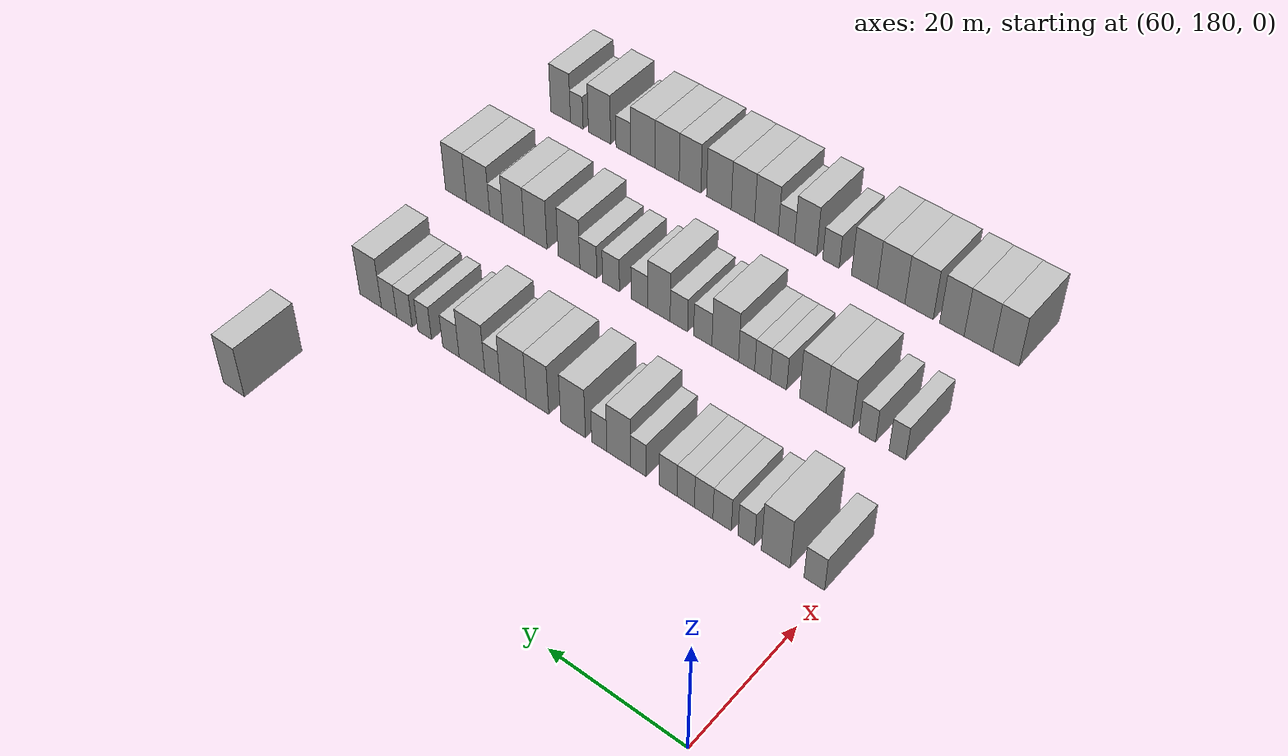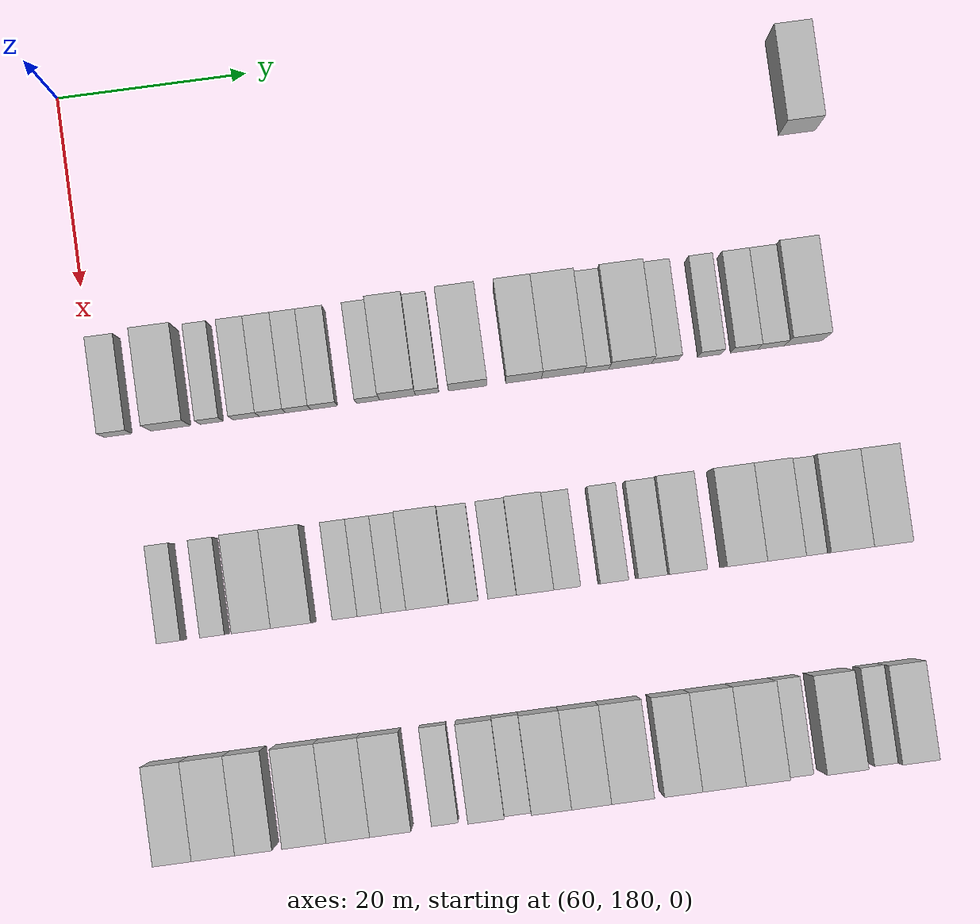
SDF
<sdf version="1.6">
 <world name="default">
  <model name="building_517">
   <static>1</static>
   <pose>69.0000 256.3888 0 0.000000 0.000000 0.000000</pose>
   <link name="link">
    <pose>0 0 4.50 0 0 0</pose>
    <collision name="collision"><geometry><box><size>10.0000 3.8949 9.0000</size></box></geometry></collision>
    <visual name="visual">
     <cast_shadows>0</cast_shadows>
     <geometry><box><size>10.0000 3.8949 9.0000</size></box></geometry>
     <material>
      <script>
       <uri>model://HANNAS_wall/materials/scripts</uri>
       <uri>model://HANNAS_wall/materials/textures</uri>
       <name>vrc/HANNAS_wall</name>
      </script>
     </material>
    </visual>
   </link>
  </model>
  <model name="building_684">
   <static>1</static>
   <pose>91.0000 181.8995 0 0.000000 0.000000 0.000000</pose>
   <link name="link">
    <pose>0 0 3.00 0 0 0</pose>
    <collision name="collision"><geometry><box><size>10.0000 2.9157 6.0000</size></box></geometry></collision>
    <visual name="visual">
     <cast_shadows>0</cast_shadows>
     <geometry><box><size>10.0000 2.9157 6.0000</size></box></geometry>
     <material>
      <script>
       <uri>model://HANNAS_wall/materials/scripts</uri>
       <uri>model://HANNAS_wall/materials/textures</uri>
       <name>vrc/HANNAS_wall</name>
      </script>
     </material>
    </visual>
   </link>
  </model>
  <model name="building_685">
   <static>1</static>
   <pose>91.0000 187.4403 0 0.000000 0.000000 0.000000</pose>
   <link name="link">
    <pose>0 0 4.50 0 0 0</pose>
    <collision name="collision"><geometry><box><size>10.0000 4.1660 9.0000</size></box></geometry></collision>
    <visual name="visual">
     <cast_shadows>0</cast_shadows>
     <geometry><box><size>10.0000 4.1660 9.0000</size></box></geometry>
     <material>
      <script>
       <uri>model://HANNAS_wall/materials/scripts</uri>
       <uri>model://HANNAS_wall/materials/textures</uri>
       <name>vrc/HANNAS_wall</name>
      </script>
     </material>
    </visual>
   </link>
  </model>
  <model name="building_686">
   <static>1</static>
   <pose>91.0000 191.7420 0 0.000000 0.000000 0.000000</pose>
   <link name="link">
    <pose>0 0 3.00 0 0 0</pose>
    <collision name="collision"><geometry><box><size>10.0000 2.4373 6.0000</size></box></geometry></collision>
    <visual name="visual">
     <cast_shadows>0</cast_shadows>
     <geometry><box><size>10.0000 2.4373 6.0000</size></box></geometry>
     <material>
      <script>
       <uri>model://HANNAS_wall/materials/scripts</uri>
       <uri>model://HANNAS_wall/materials/textures</uri>
       <name>vrc/HANNAS_wall</name>
      </script>
     </material>
    </visual>
   </link>
  </model>
  <model name="building_687">
   <static>1</static>
   <pose>91.0000 195.3330 0 0.000000 0.000000 0.000000</pose>
   <link name="link">
    <pose>0 0 3.00 0 0 0</pose>
    <collision name="collision"><geometry><box><size>10.0000 2.7448 6.0000</size></box></geometry></collision>
    <visual name="visual">
     <cast_shadows>0</cast_shadows>
     <geometry><box><size>10.0000 2.7448 6.0000</size></box></geometry>
     <material>
      <script>
       <uri>model://HANNAS_wall/materials/scripts</uri>
       <uri>model://HANNAS_wall/materials/textures</uri>
       <name>vrc/HANNAS_wall</name>
      </script>
     </material>
    </visual>
   </link>
  </model>
  <model name="building_688">
   <static>1</static>
   <pose>91.0000 198.1022 0 0.000000 0.000000 0.000000</pose>
   <link name="link">
    <pose>0 0 3.00 0 0 0</pose>
    <collision name="collision"><geometry><box><size>10.0000 2.7935 6.0000</size></box></geometry></collision>
    <visual name="visual">
     <cast_shadows>0</cast_shadows>
     <geometry><box><size>10.0000 2.7935 6.0000</size></box></geometry>
     <material>
      <script>
       <uri>model://HANNAS_wall/materials/scripts</uri>
       <uri>model://HANNAS_wall/materials/textures</uri>
       <name>vrc/HANNAS_wall</name>
      </script>
     </material>
    </visual>
   </link>
  </model>
  <model name="building_689">
   <static>1</static>
   <pose>91.0000 200.8182 0 0.000000 0.000000 0.000000</pose>
   <link name="link">
    <pose>0 0 3.00 0 0 0</pose>
    <collision name="collision"><geometry><box><size>10.0000 2.6385 6.0000</size></box></geometry></collision>
    <visual name="visual">
     <cast_shadows>0</cast_shadows>
     <geometry><box><size>10.0000 2.6385 6.0000</size></box></geometry>
     <material>
      <script>
       <uri>model://HANNAS_wall/materials/scripts</uri>
       <uri>model://HANNAS_wall/materials/textures</uri>
       <name>vrc/HANNAS_wall</name>
      </script>
     </material>
    </visual>
   </link>
  </model>
  <model name="building_690">
   <static>1</static>
   <pose>91.0000 203.5372 0 0.000000 0.000000 0.000000</pose>
   <link name="link">
    <pose>0 0 3.00 0 0 0</pose>
    <collision name="collision"><geometry><box><size>10.0000 2.7995 6.0000</size></box></geometry></collision>
    <visual name="visual">
     <cast_shadows>0</cast_shadows>
     <geometry><box><size>10.0000 2.7995 6.0000</size></box></geometry>
     <material>
      <script>
       <uri>model://HANNAS_wall/materials/scripts</uri>
       <uri>model://HANNAS_wall/materials/textures</uri>
       <name>vrc/HANNAS_wall</name>
      </script>
     </material>
    </visual>
   </link>
  </model>
  <model name="building_691">
   <static>1</static>
   <pose>91.0000 208.1622 0 0.000000 0.000000 0.000000</pose>
   <link name="link">
    <pose>0 0 3.00 0 0 0</pose>
    <collision name="collision"><geometry><box><size>10.0000 2.4504 6.0000</size></box></geometry></collision>
    <visual name="visual">
     <cast_shadows>0</cast_shadows>
     <geometry><box><size>10.0000 2.4504 6.0000</size></box></geometry>
     <material>
      <script>
       <uri>model://HANNAS_wall/materials/scripts</uri>
       <uri>model://HANNAS_wall/materials/textures</uri>
       <name>vrc/HANNAS_wall</name>
      </script>
     </material>
    </visual>
   </link>
  </model>
  <model name="building_692">
   <static>1</static>
   <pose>91.0000 211.2656 0 0.000000 0.000000 0.000000</pose>
   <link name="link">
    <pose>0 0 4.50 0 0 0</pose>
    <collision name="collision"><geometry><box><size>10.0000 3.7565 9.0000</size></box></geometry></collision>
    <visual name="visual">
     <cast_shadows>0</cast_shadows>
     <geometry><box><size>10.0000 3.7565 9.0000</size></box></geometry>
     <material>
      <script>
       <uri>model://HANNAS_wall/materials/scripts</uri>
       <uri>model://HANNAS_wall/materials/textures</uri>
       <name>vrc/HANNAS_wall</name>
      </script>
     </material>
    </visual>
   </link>
  </model>
  <model name="building_693">
   <static>1</static>
   <pose>91.0000 214.3686 0 0.000000 0.000000 0.000000</pose>
   <link name="link">
    <pose>0 0 3.00 0 0 0</pose>
    <collision name="collision"><geometry><box><size>10.0000 2.4495 6.0000</size></box></geometry></collision>
    <visual name="visual">
     <cast_shadows>0</cast_shadows>
     <geometry><box><size>10.0000 2.4495 6.0000</size></box></geometry>
     <material>
      <script>
       <uri>model://HANNAS_wall/materials/scripts</uri>
       <uri>model://HANNAS_wall/materials/textures</uri>
       <name>vrc/HANNAS_wall</name>
      </script>
     </material>
    </visual>
   </link>
  </model>
  <model name="building_694">
   <static>1</static>
   <pose>91.0000 218.6057 0 0.000000 0.000000 0.000000</pose>
   <link name="link">
    <pose>0 0 4.50 0 0 0</pose>
    <collision name="collision"><geometry><box><size>10.0000 4.0247 9.0000</size></box></geometry></collision>
    <visual name="visual">
     <cast_shadows>0</cast_shadows>
     <geometry><box><size>10.0000 4.0247 9.0000</size></box></geometry>
     <material>
      <script>
       <uri>model://HANNAS_wall/materials/scripts</uri>
       <uri>model://HANNAS_wall/materials/textures</uri>
       <name>vrc/HANNAS_wall</name>
      </script>
     </material>
    </visual>
   </link>
  </model>
  <model name="building_695">
   <static>1</static>
   <pose>91.0000 224.4945 0 0.000000 0.000000 0.000000</pose>
   <link name="link">
    <pose>0 0 4.50 0 0 0</pose>
    <collision name="collision"><geometry><box><size>10.0000 3.7529 9.0000</size></box></geometry></collision>
    <visual name="visual">
     <cast_shadows>0</cast_shadows>
     <geometry><box><size>10.0000 3.7529 9.0000</size></box></geometry>
     <material>
      <script>
       <uri>model://HANNAS_wall/materials/scripts</uri>
       <uri>model://HANNAS_wall/materials/textures</uri>
       <name>vrc/HANNAS_wall</name>
      </script>
     </material>
    </visual>
   </link>
  </model>
  <model name="building_696">
   <static>1</static>
   <pose>91.0000 228.5931 0 0.000000 0.000000 0.000000</pose>
   <link name="link">
    <pose>0 0 4.50 0 0 0</pose>
    <collision name="collision"><geometry><box><size>10.0000 4.4443 9.0000</size></box></geometry></collision>
    <visual name="visual">
     <cast_shadows>0</cast_shadows>
     <geometry><box><size>10.0000 4.4443 9.0000</size></box></geometry>
     <material>
      <script>
       <uri>model://HANNAS_wall/materials/scripts</uri>
       <uri>model://HANNAS_wall/materials/textures</uri>
       <name>vrc/HANNAS_wall</name>
      </script>
     </material>
    </visual>
   </link>
  </model>
  <model name="building_697">
   <static>1</static>
   <pose>91.0000 232.1292 0 0.000000 0.000000 0.000000</pose>
   <link name="link">
    <pose>0 0 3.00 0 0 0</pose>
    <collision name="collision"><geometry><box><size>10.0000 2.6278 6.0000</size></box></geometry></collision>
    <visual name="visual">
     <cast_shadows>0</cast_shadows>
     <geometry><box><size>10.0000 2.6278 6.0000</size></box></geometry>
     <material>
      <script>
       <uri>model://HANNAS_wall/materials/scripts</uri>
       <uri>model://HANNAS_wall/materials/textures</uri>
       <name>vrc/HANNAS_wall</name>
      </script>
     </material>
    </visual>
   </link>
  </model>
  <model name="building_698">
   <static>1</static>
   <pose>91.0000 235.6832 0 0.000000 0.000000 0.000000</pose>
   <link name="link">
    <pose>0 0 4.50 0 0 0</pose>
    <collision name="collision"><geometry><box><size>10.0000 4.4802 9.0000</size></box></geometry></collision>
    <visual name="visual">
     <cast_shadows>0</cast_shadows>
     <geometry><box><size>10.0000 4.4802 9.0000</size></box></geometry>
     <material>
      <script>
       <uri>model://HANNAS_wall/materials/scripts</uri>
       <uri>model://HANNAS_wall/materials/textures</uri>
       <name>vrc/HANNAS_wall</name>
      </script>
     </material>
    </visual>
   </link>
  </model>
  <model name="building_699">
   <static>1</static>
   <pose>91.0000 239.3700 0 0.000000 0.000000 0.000000</pose>
   <link name="link">
    <pose>0 0 3.00 0 0 0</pose>
    <collision name="collision"><geometry><box><size>10.0000 2.8936 6.0000</size></box></geometry></collision>
    <visual name="visual">
     <cast_shadows>0</cast_shadows>
     <geometry><box><size>10.0000 2.8936 6.0000</size></box></geometry>
     <material>
      <script>
       <uri>model://HANNAS_wall/materials/scripts</uri>
       <uri>model://HANNAS_wall/materials/textures</uri>
       <name>vrc/HANNAS_wall</name>
      </script>
     </material>
    </visual>
   </link>
  </model>
  <model name="building_700">
   <static>1</static>
   <pose>91.0000 244.0454 0 0.000000 0.000000 0.000000</pose>
   <link name="link">
    <pose>0 0 3.00 0 0 0</pose>
    <collision name="collision"><geometry><box><size>10.0000 2.4572 6.0000</size></box></geometry></collision>
    <visual name="visual">
     <cast_shadows>0</cast_shadows>
     <geometry><box><size>10.0000 2.4572 6.0000</size></box></geometry>
     <material>
      <script>
       <uri>model://HANNAS_wall/materials/scripts</uri>
       <uri>model://HANNAS_wall/materials/textures</uri>
       <name>vrc/HANNAS_wall</name>
      </script>
     </material>
    </visual>
   </link>
  </model>
  <model name="building_701">
   <static>1</static>
   <pose>91.0000 247.6893 0 0.000000 0.000000 0.000000</pose>
   <link name="link">
    <pose>0 0 3.00 0 0 0</pose>
    <collision name="collision"><geometry><box><size>10.0000 2.8304 6.0000</size></box></geometry></collision>
    <visual name="visual">
     <cast_shadows>0</cast_shadows>
     <geometry><box><size>10.0000 2.8304 6.0000</size></box></geometry>
     <material>
      <script>
       <uri>model://HANNAS_wall/materials/scripts</uri>
       <uri>model://HANNAS_wall/materials/textures</uri>
       <name>vrc/HANNAS_wall</name>
      </script>
     </material>
    </visual>
   </link>
  </model>
  <model name="building_702">
   <static>1</static>
   <pose>91.0000 250.5088 0 0.000000 0.000000 0.000000</pose>
   <link name="link">
    <pose>0 0 3.00 0 0 0</pose>
    <collision name="collision"><geometry><box><size>10.0000 2.8086 6.0000</size></box></geometry></collision>
    <visual name="visual">
     <cast_shadows>0</cast_shadows>
     <geometry><box><size>10.0000 2.8086 6.0000</size></box></geometry>
     <material>
      <script>
       <uri>model://HANNAS_wall/materials/scripts</uri>
       <uri>model://HANNAS_wall/materials/textures</uri>
       <name>vrc/HANNAS_wall</name>
      </script>
     </material>
    </visual>
   </link>
  </model>
  <model name="building_703">
   <static>1</static>
   <pose>91.0000 253.9216 0 0.000000 0.000000 0.000000</pose>
   <link name="link">
    <pose>0 0 4.50 0 0 0</pose>
    <collision name="collision"><geometry><box><size>10.0000 4.0170 9.0000</size></box></geometry></collision>
    <visual name="visual">
     <cast_shadows>0</cast_shadows>
     <geometry><box><size>10.0000 4.0170 9.0000</size></box></geometry>
     <material>
      <script>
       <uri>model://HANNAS_wall/materials/scripts</uri>
       <uri>model://HANNAS_wall/materials/textures</uri>
       <name>vrc/HANNAS_wall</name>
      </script>
     </material>
    </visual>
   </link>
  </model>
  <model name="building_883">
   <static>1</static>
   <pose>113.0000 185.0300 0 0.000000 0.000000 0.000000</pose>
   <link name="link">
    <pose>0 0 3.00 0 0 0</pose>
    <collision name="collision"><geometry><box><size>10.0000 2.4411 6.0000</size></box></geometry></collision>
    <visual name="visual">
     <cast_shadows>0</cast_shadows>
     <geometry><box><size>10.0000 2.4411 6.0000</size></box></geometry>
     <material>
      <script>
       <uri>model://HANNAS_wall/materials/scripts</uri>
       <uri>model://HANNAS_wall/materials/textures</uri>
       <name>vrc/HANNAS_wall</name>
      </script>
     </material>
    </visual>
   </link>
  </model>
  <model name="building_884">
   <static>1</static>
   <pose>113.0000 189.5087 0 0.000000 0.000000 0.000000</pose>
   <link name="link">
    <pose>0 0 3.00 0 0 0</pose>
    <collision name="collision"><geometry><box><size>10.0000 2.5164 6.0000</size></box></geometry></collision>
    <visual name="visual">
     <cast_shadows>0</cast_shadows>
     <geometry><box><size>10.0000 2.5164 6.0000</size></box></geometry>
     <material>
      <script>
       <uri>model://HANNAS_wall/materials/scripts</uri>
       <uri>model://HANNAS_wall/materials/textures</uri>
       <name>vrc/HANNAS_wall</name>
      </script>
     </material>
    </visual>
   </link>
  </model>
  <model name="building_885">
   <static>1</static>
   <pose>113.0000 193.7517 0 0.000000 0.000000 0.000000</pose>
   <link name="link">
    <pose>0 0 4.50 0 0 0</pose>
    <collision name="collision"><geometry><box><size>10.0000 3.9695 9.0000</size></box></geometry></collision>
    <visual name="visual">
     <cast_shadows>0</cast_shadows>
     <geometry><box><size>10.0000 3.9695 9.0000</size></box></geometry>
     <material>
      <script>
       <uri>model://HANNAS_wall/materials/scripts</uri>
       <uri>model://HANNAS_wall/materials/textures</uri>
       <name>vrc/HANNAS_wall</name>
      </script>
     </material>
    </visual>
   </link>
  </model>
  <model name="building_886">
   <static>1</static>
   <pose>113.0000 197.7740 0 0.000000 0.000000 0.000000</pose>
   <link name="link">
    <pose>0 0 4.50 0 0 0</pose>
    <collision name="collision"><geometry><box><size>10.0000 4.0751 9.0000</size></box></geometry></collision>
    <visual name="visual">
     <cast_shadows>0</cast_shadows>
     <geometry><box><size>10.0000 4.0751 9.0000</size></box></geometry>
     <material>
      <script>
       <uri>model://HANNAS_wall/materials/scripts</uri>
       <uri>model://HANNAS_wall/materials/textures</uri>
       <name>vrc/HANNAS_wall</name>
      </script>
     </material>
    </visual>
   </link>
  </model>
  <model name="building_887">
   <static>1</static>
   <pose>113.0000 203.0954 0 0.000000 0.000000 0.000000</pose>
   <link name="link">
    <pose>0 0 3.00 0 0 0</pose>
    <collision name="collision"><geometry><box><size>10.0000 2.5678 6.0000</size></box></geometry></collision>
    <visual name="visual">
     <cast_shadows>0</cast_shadows>
     <geometry><box><size>10.0000 2.5678 6.0000</size></box></geometry>
     <material>
      <script>
       <uri>model://HANNAS_wall/materials/scripts</uri>
       <uri>model://HANNAS_wall/materials/textures</uri>
       <name>vrc/HANNAS_wall</name>
      </script>
     </material>
    </visual>
   </link>
  </model>
  <model name="building_888">
   <static>1</static>
   <pose>113.0000 205.6244 0 0.000000 0.000000 0.000000</pose>
   <link name="link">
    <pose>0 0 3.00 0 0 0</pose>
    <collision name="collision"><geometry><box><size>10.0000 2.4902 6.0000</size></box></geometry></collision>
    <visual name="visual">
     <cast_shadows>0</cast_shadows>
     <geometry><box><size>10.0000 2.4902 6.0000</size></box></geometry>
     <material>
      <script>
       <uri>model://HANNAS_wall/materials/scripts</uri>
       <uri>model://HANNAS_wall/materials/textures</uri>
       <name>vrc/HANNAS_wall</name>
      </script>
     </material>
    </visual>
   </link>
  </model>
  <model name="building_889">
   <static>1</static>
   <pose>113.0000 208.1648 0 0.000000 0.000000 0.000000</pose>
   <link name="link">
    <pose>0 0 3.00 0 0 0</pose>
    <collision name="collision"><geometry><box><size>10.0000 2.5906 6.0000</size></box></geometry></collision>
    <visual name="visual">
     <cast_shadows>0</cast_shadows>
     <geometry><box><size>10.0000 2.5906 6.0000</size></box></geometry>
     <material>
      <script>
       <uri>model://HANNAS_wall/materials/scripts</uri>
       <uri>model://HANNAS_wall/materials/textures</uri>
       <name>vrc/HANNAS_wall</name>
      </script>
     </material>
    </visual>
   </link>
  </model>
  <model name="building_890">
   <static>1</static>
   <pose>113.0000 211.6193 0 0.000000 0.000000 0.000000</pose>
   <link name="link">
    <pose>0 0 4.50 0 0 0</pose>
    <collision name="collision"><geometry><box><size>10.0000 4.3185 9.0000</size></box></geometry></collision>
    <visual name="visual">
     <cast_shadows>0</cast_shadows>
     <geometry><box><size>10.0000 4.3185 9.0000</size></box></geometry>
     <material>
      <script>
       <uri>model://HANNAS_wall/materials/scripts</uri>
       <uri>model://HANNAS_wall/materials/textures</uri>
       <name>vrc/HANNAS_wall</name>
      </script>
     </material>
    </visual>
   </link>
  </model>
  <model name="building_891">
   <static>1</static>
   <pose>113.0000 215.2752 0 0.000000 0.000000 0.000000</pose>
   <link name="link">
    <pose>0 0 3.00 0 0 0</pose>
    <collision name="collision"><geometry><box><size>10.0000 2.9932 6.0000</size></box></geometry></collision>
    <visual name="visual">
     <cast_shadows>0</cast_shadows>
     <geometry><box><size>10.0000 2.9932 6.0000</size></box></geometry>
     <material>
      <script>
       <uri>model://HANNAS_wall/materials/scripts</uri>
       <uri>model://HANNAS_wall/materials/textures</uri>
       <name>vrc/HANNAS_wall</name>
      </script>
     </material>
    </visual>
   </link>
  </model>
  <model name="building_892">
   <static>1</static>
   <pose>113.0000 219.2291 0 0.000000 0.000000 0.000000</pose>
   <link name="link">
    <pose>0 0 3.00 0 0 0</pose>
    <collision name="collision"><geometry><box><size>10.0000 2.9147 6.0000</size></box></geometry></collision>
    <visual name="visual">
     <cast_shadows>0</cast_shadows>
     <geometry><box><size>10.0000 2.9147 6.0000</size></box></geometry>
     <material>
      <script>
       <uri>model://HANNAS_wall/materials/scripts</uri>
       <uri>model://HANNAS_wall/materials/textures</uri>
       <name>vrc/HANNAS_wall</name>
      </script>
     </material>
    </visual>
   </link>
  </model>
  <model name="building_893">
   <static>1</static>
   <pose>113.0000 222.5779 0 0.000000 0.000000 0.000000</pose>
   <link name="link">
    <pose>0 0 4.50 0 0 0</pose>
    <collision name="collision"><geometry><box><size>10.0000 3.7829 9.0000</size></box></geometry></collision>
    <visual name="visual">
     <cast_shadows>0</cast_shadows>
     <geometry><box><size>10.0000 3.7829 9.0000</size></box></geometry>
     <material>
      <script>
       <uri>model://HANNAS_wall/materials/scripts</uri>
       <uri>model://HANNAS_wall/materials/textures</uri>
       <name>vrc/HANNAS_wall</name>
      </script>
     </material>
    </visual>
   </link>
  </model>
  <model name="building_894">
   <static>1</static>
   <pose>113.0000 225.8832 0 0.000000 0.000000 0.000000</pose>
   <link name="link">
    <pose>0 0 3.00 0 0 0</pose>
    <collision name="collision"><geometry><box><size>10.0000 2.8278 6.0000</size></box></geometry></collision>
    <visual name="visual">
     <cast_shadows>0</cast_shadows>
     <geometry><box><size>10.0000 2.8278 6.0000</size></box></geometry>
     <material>
      <script>
       <uri>model://HANNAS_wall/materials/scripts</uri>
       <uri>model://HANNAS_wall/materials/textures</uri>
       <name>vrc/HANNAS_wall</name>
      </script>
     </material>
    </visual>
   </link>
  </model>
  <model name="building_895">
   <static>1</static>
   <pose>113.0000 230.7595 0 0.000000 0.000000 0.000000</pose>
   <link name="link">
    <pose>0 0 3.00 0 0 0</pose>
    <collision name="collision"><geometry><box><size>10.0000 2.9247 6.0000</size></box></geometry></collision>
    <visual name="visual">
     <cast_shadows>0</cast_shadows>
     <geometry><box><size>10.0000 2.9247 6.0000</size></box></geometry>
     <material>
      <script>
       <uri>model://HANNAS_wall/materials/scripts</uri>
       <uri>model://HANNAS_wall/materials/textures</uri>
       <name>vrc/HANNAS_wall</name>
      </script>
     </material>
    </visual>
   </link>
  </model>
  <model name="building_896">
   <static>1</static>
   <pose>113.0000 234.7168 0 0.000000 0.000000 0.000000</pose>
   <link name="link">
    <pose>0 0 3.00 0 0 0</pose>
    <collision name="collision"><geometry><box><size>10.0000 2.9900 6.0000</size></box></geometry></collision>
    <visual name="visual">
     <cast_shadows>0</cast_shadows>
     <geometry><box><size>10.0000 2.9900 6.0000</size></box></geometry>
     <material>
      <script>
       <uri>model://HANNAS_wall/materials/scripts</uri>
       <uri>model://HANNAS_wall/materials/textures</uri>
       <name>vrc/HANNAS_wall</name>
      </script>
     </material>
    </visual>
   </link>
  </model>
  <model name="building_897">
   <static>1</static>
   <pose>113.0000 238.1396 0 0.000000 0.000000 0.000000</pose>
   <link name="link">
    <pose>0 0 4.50 0 0 0</pose>
    <collision name="collision"><geometry><box><size>10.0000 3.8555 9.0000</size></box></geometry></collision>
    <visual name="visual">
     <cast_shadows>0</cast_shadows>
     <geometry><box><size>10.0000 3.8555 9.0000</size></box></geometry>
     <material>
      <script>
       <uri>model://HANNAS_wall/materials/scripts</uri>
       <uri>model://HANNAS_wall/materials/textures</uri>
       <name>vrc/HANNAS_wall</name>
      </script>
     </material>
    </visual>
   </link>
  </model>
  <model name="building_898">
   <static>1</static>
   <pose>113.0000 244.1259 0 0.000000 0.000000 0.000000</pose>
   <link name="link">
    <pose>0 0 4.50 0 0 0</pose>
    <collision name="collision"><geometry><box><size>10.0000 4.1171 9.0000</size></box></geometry></collision>
    <visual name="visual">
     <cast_shadows>0</cast_shadows>
     <geometry><box><size>10.0000 4.1171 9.0000</size></box></geometry>
     <material>
      <script>
       <uri>model://HANNAS_wall/materials/scripts</uri>
       <uri>model://HANNAS_wall/materials/textures</uri>
       <name>vrc/HANNAS_wall</name>
      </script>
     </material>
    </visual>
   </link>
  </model>
  <model name="building_899">
   <static>1</static>
   <pose>113.0000 248.1495 0 0.000000 0.000000 0.000000</pose>
   <link name="link">
    <pose>0 0 4.50 0 0 0</pose>
    <collision name="collision"><geometry><box><size>10.0000 3.9302 9.0000</size></box></geometry></collision>
    <visual name="visual">
     <cast_shadows>0</cast_shadows>
     <geometry><box><size>10.0000 3.9302 9.0000</size></box></geometry>
     <material>
      <script>
       <uri>model://HANNAS_wall/materials/scripts</uri>
       <uri>model://HANNAS_wall/materials/textures</uri>
       <name>vrc/HANNAS_wall</name>
      </script>
     </material>
    </visual>
   </link>
  </model>
  <model name="building_900">
   <static>1</static>
   <pose>113.0000 251.3702 0 0.000000 0.000000 0.000000</pose>
   <link name="link">
    <pose>0 0 3.00 0 0 0</pose>
    <collision name="collision"><geometry><box><size>10.0000 2.5113 6.0000</size></box></geometry></collision>
    <visual name="visual">
     <cast_shadows>0</cast_shadows>
     <geometry><box><size>10.0000 2.5113 6.0000</size></box></geometry>
     <material>
      <script>
       <uri>model://HANNAS_wall/materials/scripts</uri>
       <uri>model://HANNAS_wall/materials/textures</uri>
       <name>vrc/HANNAS_wall</name>
      </script>
     </material>
    </visual>
   </link>
  </model>
  <model name="building_901">
   <static>1</static>
   <pose>113.0000 254.8274 0 0.000000 0.000000 0.000000</pose>
   <link name="link">
    <pose>0 0 4.50 0 0 0</pose>
    <collision name="collision"><geometry><box><size>10.0000 4.4030 9.0000</size></box></geometry></collision>
    <visual name="visual">
     <cast_shadows>0</cast_shadows>
     <geometry><box><size>10.0000 4.4030 9.0000</size></box></geometry>
     <material>
      <script>
       <uri>model://HANNAS_wall/materials/scripts</uri>
       <uri>model://HANNAS_wall/materials/textures</uri>
       <name>vrc/HANNAS_wall</name>
      </script>
     </material>
    </visual>
   </link>
  </model>
  <model name="building_902">
   <static>1</static>
   <pose>113.0000 259.0208 0 0.000000 0.000000 0.000000</pose>
   <link name="link">
    <pose>0 0 4.50 0 0 0</pose>
    <collision name="collision"><geometry><box><size>10.0000 3.9839 9.0000</size></box></geometry></collision>
    <visual name="visual">
     <cast_shadows>0</cast_shadows>
     <geometry><box><size>10.0000 3.9839 9.0000</size></box></geometry>
     <material>
      <script>
       <uri>model://HANNAS_wall/materials/scripts</uri>
       <uri>model://HANNAS_wall/materials/textures</uri>
       <name>vrc/HANNAS_wall</name>
      </script>
     </material>
    </visual>
   </link>
  </model>
  <model name="building_1069">
   <static>1</static>
   <pose>135.0000 182.9321 0 0.000000 0.000000 0.000000</pose>
   <link name="link">
    <pose>0 0 4.50 0 0 0</pose>
    <collision name="collision"><geometry><box><size>10.0000 3.9301 9.0000</size></box></geometry></collision>
    <visual name="visual">
     <cast_shadows>0</cast_shadows>
     <geometry><box><size>10.0000 3.9301 9.0000</size></box></geometry>
     <material>
      <script>
       <uri>model://HANNAS_wall/materials/scripts</uri>
       <uri>model://HANNAS_wall/materials/textures</uri>
       <name>vrc/HANNAS_wall</name>
      </script>
     </material>
    </visual>
   </link>
  </model>
  <model name="building_1070">
   <static>1</static>
   <pose>135.0000 187.0793 0 0.000000 0.000000 0.000000</pose>
   <link name="link">
    <pose>0 0 4.50 0 0 0</pose>
    <collision name="collision"><geometry><box><size>10.0000 4.3643 9.0000</size></box></geometry></collision>
    <visual name="visual">
     <cast_shadows>0</cast_shadows>
     <geometry><box><size>10.0000 4.3643 9.0000</size></box></geometry>
     <material>
      <script>
       <uri>model://HANNAS_wall/materials/scripts</uri>
       <uri>model://HANNAS_wall/materials/textures</uri>
       <name>vrc/HANNAS_wall</name>
      </script>
     </material>
    </visual>
   </link>
  </model>
  <model name="building_1071">
   <static>1</static>
   <pose>135.0000 191.1393 0 0.000000 0.000000 0.000000</pose>
   <link name="link">
    <pose>0 0 4.50 0 0 0</pose>
    <collision name="collision"><geometry><box><size>10.0000 3.7558 9.0000</size></box></geometry></collision>
    <visual name="visual">
     <cast_shadows>0</cast_shadows>
     <geometry><box><size>10.0000 3.7558 9.0000</size></box></geometry>
     <material>
      <script>
       <uri>model://HANNAS_wall/materials/scripts</uri>
       <uri>model://HANNAS_wall/materials/textures</uri>
       <name>vrc/HANNAS_wall</name>
      </script>
     </material>
    </visual>
   </link>
  </model>
  <model name="building_1072">
   <static>1</static>
   <pose>135.0000 196.2419 0 0.000000 0.000000 0.000000</pose>
   <link name="link">
    <pose>0 0 4.50 0 0 0</pose>
    <collision name="collision"><geometry><box><size>10.0000 4.4493 9.0000</size></box></geometry></collision>
    <visual name="visual">
     <cast_shadows>0</cast_shadows>
     <geometry><box><size>10.0000 4.4493 9.0000</size></box></geometry>
     <material>
      <script>
       <uri>model://HANNAS_wall/materials/scripts</uri>
       <uri>model://HANNAS_wall/materials/textures</uri>
       <name>vrc/HANNAS_wall</name>
      </script>
     </material>
    </visual>
   </link>
  </model>
  <model name="building_1073">
   <static>1</static>
   <pose>135.0000 200.6690 0 0.000000 0.000000 0.000000</pose>
   <link name="link">
    <pose>0 0 4.50 0 0 0</pose>
    <collision name="collision"><geometry><box><size>10.0000 4.4049 9.0000</size></box></geometry></collision>
    <visual name="visual">
     <cast_shadows>0</cast_shadows>
     <geometry><box><size>10.0000 4.4049 9.0000</size></box></geometry>
     <material>
      <script>
       <uri>model://HANNAS_wall/materials/scripts</uri>
       <uri>model://HANNAS_wall/materials/textures</uri>
       <name>vrc/HANNAS_wall</name>
      </script>
     </material>
    </visual>
   </link>
  </model>
  <model name="building_1074">
   <static>1</static>
   <pose>135.0000 204.9567 0 0.000000 0.000000 0.000000</pose>
   <link name="link">
    <pose>0 0 4.50 0 0 0</pose>
    <collision name="collision"><geometry><box><size>10.0000 4.1705 9.0000</size></box></geometry></collision>
    <visual name="visual">
     <cast_shadows>0</cast_shadows>
     <geometry><box><size>10.0000 4.1705 9.0000</size></box></geometry>
     <material>
      <script>
       <uri>model://HANNAS_wall/materials/scripts</uri>
       <uri>model://HANNAS_wall/materials/textures</uri>
       <name>vrc/HANNAS_wall</name>
      </script>
     </material>
    </visual>
   </link>
  </model>
  <model name="building_1075">
   <static>1</static>
   <pose>135.0000 210.4076 0 0.000000 0.000000 0.000000</pose>
   <link name="link">
    <pose>0 0 3.00 0 0 0</pose>
    <collision name="collision"><geometry><box><size>10.0000 2.7313 6.0000</size></box></geometry></collision>
    <visual name="visual">
     <cast_shadows>0</cast_shadows>
     <geometry><box><size>10.0000 2.7313 6.0000</size></box></geometry>
     <material>
      <script>
       <uri>model://HANNAS_wall/materials/scripts</uri>
       <uri>model://HANNAS_wall/materials/textures</uri>
       <name>vrc/HANNAS_wall</name>
      </script>
     </material>
    </visual>
   </link>
  </model>
  <model name="building_1076">
   <static>1</static>
   <pose>135.0000 214.6173 0 0.000000 0.000000 0.000000</pose>
   <link name="link">
    <pose>0 0 4.50 0 0 0</pose>
    <collision name="collision"><geometry><box><size>10.0000 3.6879 9.0000</size></box></geometry></collision>
    <visual name="visual">
     <cast_shadows>0</cast_shadows>
     <geometry><box><size>10.0000 3.6879 9.0000</size></box></geometry>
     <material>
      <script>
       <uri>model://HANNAS_wall/materials/scripts</uri>
       <uri>model://HANNAS_wall/materials/textures</uri>
       <name>vrc/HANNAS_wall</name>
      </script>
     </material>
    </visual>
   </link>
  </model>
  <model name="building_1077">
   <static>1</static>
   <pose>135.0000 217.8271 0 0.000000 0.000000 0.000000</pose>
   <link name="link">
    <pose>0 0 3.00 0 0 0</pose>
    <collision name="collision"><geometry><box><size>10.0000 2.7317 6.0000</size></box></geometry></collision>
    <visual name="visual">
     <cast_shadows>0</cast_shadows>
     <geometry><box><size>10.0000 2.7317 6.0000</size></box></geometry>
     <material>
      <script>
       <uri>model://HANNAS_wall/materials/scripts</uri>
       <uri>model://HANNAS_wall/materials/textures</uri>
       <name>vrc/HANNAS_wall</name>
      </script>
     </material>
    </visual>
   </link>
  </model>
  <model name="building_1078">
   <static>1</static>
   <pose>135.0000 221.2267 0 0.000000 0.000000 0.000000</pose>
   <link name="link">
    <pose>0 0 4.50 0 0 0</pose>
    <collision name="collision"><geometry><box><size>10.0000 4.0676 9.0000</size></box></geometry></collision>
    <visual name="visual">
     <cast_shadows>0</cast_shadows>
     <geometry><box><size>10.0000 4.0676 9.0000</size></box></geometry>
     <material>
      <script>
       <uri>model://HANNAS_wall/materials/scripts</uri>
       <uri>model://HANNAS_wall/materials/textures</uri>
       <name>vrc/HANNAS_wall</name>
      </script>
     </material>
    </visual>
   </link>
  </model>
  <model name="building_1079">
   <static>1</static>
   <pose>135.0000 225.2866 0 0.000000 0.000000 0.000000</pose>
   <link name="link">
    <pose>0 0 4.50 0 0 0</pose>
    <collision name="collision"><geometry><box><size>10.0000 4.0523 9.0000</size></box></geometry></collision>
    <visual name="visual">
     <cast_shadows>0</cast_shadows>
     <geometry><box><size>10.0000 4.0523 9.0000</size></box></geometry>
     <material>
      <script>
       <uri>model://HANNAS_wall/materials/scripts</uri>
       <uri>model://HANNAS_wall/materials/textures</uri>
       <name>vrc/HANNAS_wall</name>
      </script>
     </material>
    </visual>
   </link>
  </model>
  <model name="building_1080">
   <static>1</static>
   <pose>135.0000 229.4803 0 0.000000 0.000000 0.000000</pose>
   <link name="link">
    <pose>0 0 4.50 0 0 0</pose>
    <collision name="collision"><geometry><box><size>10.0000 4.3351 9.0000</size></box></geometry></collision>
    <visual name="visual">
     <cast_shadows>0</cast_shadows>
     <geometry><box><size>10.0000 4.3351 9.0000</size></box></geometry>
     <material>
      <script>
       <uri>model://HANNAS_wall/materials/scripts</uri>
       <uri>model://HANNAS_wall/materials/textures</uri>
       <name>vrc/HANNAS_wall</name>
      </script>
     </material>
    </visual>
   </link>
  </model>
  <model name="building_1081">
   <static>1</static>
   <pose>135.0000 234.5835 0 0.000000 0.000000 0.000000</pose>
   <link name="link">
    <pose>0 0 4.50 0 0 0</pose>
    <collision name="collision"><geometry><box><size>10.0000 3.8713 9.0000</size></box></geometry></collision>
    <visual name="visual">
     <cast_shadows>0</cast_shadows>
     <geometry><box><size>10.0000 3.8713 9.0000</size></box></geometry>
     <material>
      <script>
       <uri>model://HANNAS_wall/materials/scripts</uri>
       <uri>model://HANNAS_wall/materials/textures</uri>
       <name>vrc/HANNAS_wall</name>
      </script>
     </material>
    </visual>
   </link>
  </model>
  <model name="building_1082">
   <static>1</static>
   <pose>135.0000 238.7078 0 0.000000 0.000000 0.000000</pose>
   <link name="link">
    <pose>0 0 4.50 0 0 0</pose>
    <collision name="collision"><geometry><box><size>10.0000 4.3773 9.0000</size></box></geometry></collision>
    <visual name="visual">
     <cast_shadows>0</cast_shadows>
     <geometry><box><size>10.0000 4.3773 9.0000</size></box></geometry>
     <material>
      <script>
       <uri>model://HANNAS_wall/materials/scripts</uri>
       <uri>model://HANNAS_wall/materials/textures</uri>
       <name>vrc/HANNAS_wall</name>
      </script>
     </material>
    </visual>
   </link>
  </model>
  <model name="building_1083">
   <static>1</static>
   <pose>135.0000 243.1419 0 0.000000 0.000000 0.000000</pose>
   <link name="link">
    <pose>0 0 4.50 0 0 0</pose>
    <collision name="collision"><geometry><box><size>10.0000 4.4910 9.0000</size></box></geometry></collision>
    <visual name="visual">
     <cast_shadows>0</cast_shadows>
     <geometry><box><size>10.0000 4.4910 9.0000</size></box></geometry>
     <material>
      <script>
       <uri>model://HANNAS_wall/materials/scripts</uri>
       <uri>model://HANNAS_wall/materials/textures</uri>
       <name>vrc/HANNAS_wall</name>
      </script>
     </material>
    </visual>
   </link>
  </model>
  <model name="building_1084">
   <static>1</static>
   <pose>135.0000 246.7436 0 0.000000 0.000000 0.000000</pose>
   <link name="link">
    <pose>0 0 3.00 0 0 0</pose>
    <collision name="collision"><geometry><box><size>10.0000 2.7124 6.0000</size></box></geometry></collision>
    <visual name="visual">
     <cast_shadows>0</cast_shadows>
     <geometry><box><size>10.0000 2.7124 6.0000</size></box></geometry>
     <material>
      <script>
       <uri>model://HANNAS_wall/materials/scripts</uri>
       <uri>model://HANNAS_wall/materials/textures</uri>
       <name>vrc/HANNAS_wall</name>
      </script>
     </material>
    </visual>
   </link>
  </model>
  <model name="building_1085">
   <static>1</static>
   <pose>135.0000 251.2017 0 0.000000 0.000000 0.000000</pose>
   <link name="link">
    <pose>0 0 4.50 0 0 0</pose>
    <collision name="collision"><geometry><box><size>10.0000 4.2037 9.0000</size></box></geometry></collision>
    <visual name="visual">
     <cast_shadows>0</cast_shadows>
     <geometry><box><size>10.0000 4.2037 9.0000</size></box></geometry>
     <material>
      <script>
       <uri>model://HANNAS_wall/materials/scripts</uri>
       <uri>model://HANNAS_wall/materials/textures</uri>
       <name>vrc/HANNAS_wall</name>
      </script>
     </material>
    </visual>
   </link>
  </model>
  <model name="building_1086">
   <static>1</static>
   <pose>135.0000 255.5115 0 0.000000 0.000000 0.000000</pose>
   <link name="link">
    <pose>0 0 3.00 0 0 0</pose>
    <collision name="collision"><geometry><box><size>10.0000 2.4158 6.0000</size></box></geometry></collision>
    <visual name="visual">
     <cast_shadows>0</cast_shadows>
     <geometry><box><size>10.0000 2.4158 6.0000</size></box></geometry>
     <material>
      <script>
       <uri>model://HANNAS_wall/materials/scripts</uri>
       <uri>model://HANNAS_wall/materials/textures</uri>
       <name>vrc/HANNAS_wall</name>
      </script>
     </material>
    </visual>
   </link>
  </model>
  <model name="building_1087">
   <static>1</static>
   <pose>135.0000 258.6173 0 0.000000 0.000000 0.000000</pose>
   <link name="link">
    <pose>0 0 4.50 0 0 0</pose>
    <collision name="collision"><geometry><box><size>10.0000 3.7958 9.0000</size></box></geometry></collision>
    <visual name="visual">
     <cast_shadows>0</cast_shadows>
     <geometry><box><size>10.0000 3.7958 9.0000</size></box></geometry>
     <material>
      <script>
       <uri>model://HANNAS_wall/materials/scripts</uri>
       <uri>model://HANNAS_wall/materials/textures</uri>
       <name>vrc/HANNAS_wall</name>
      </script>
     </material>
    </visual>
   </link>
  </model>
 </world>
</sdf>
